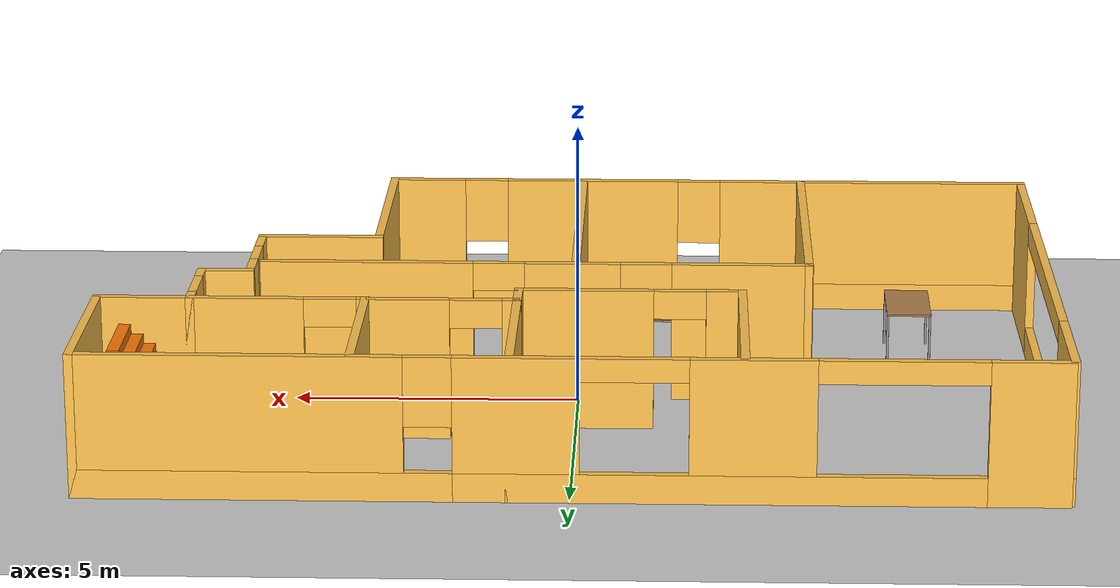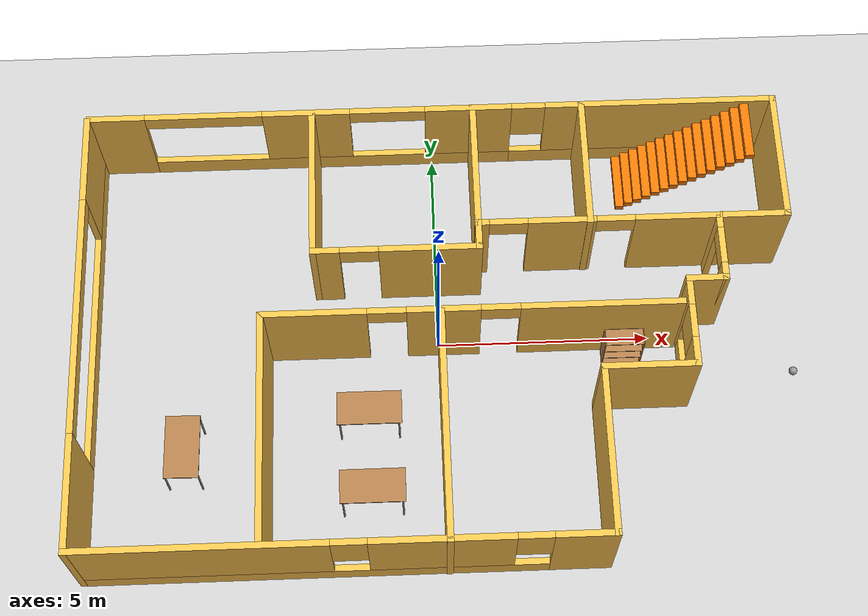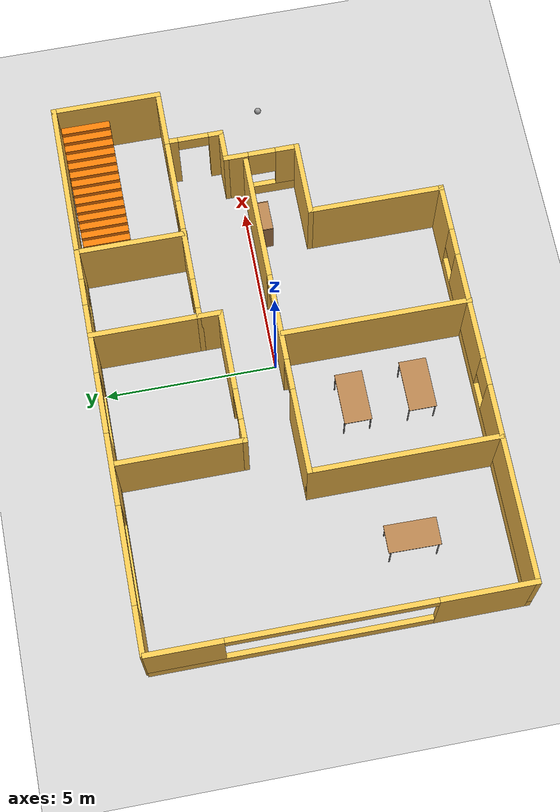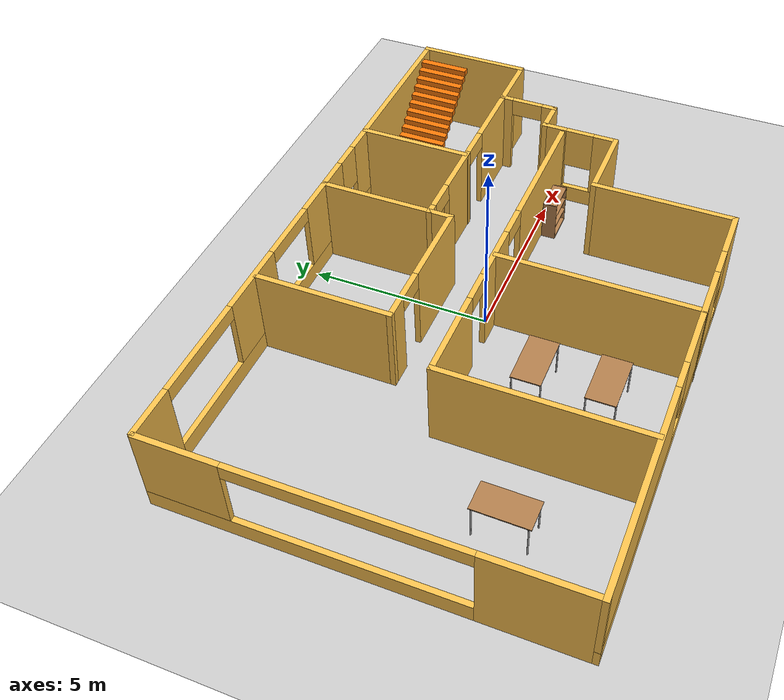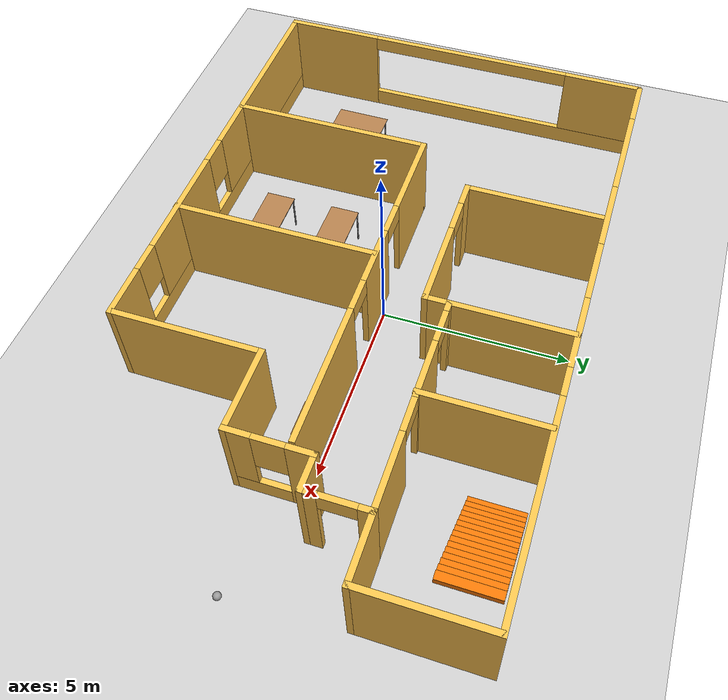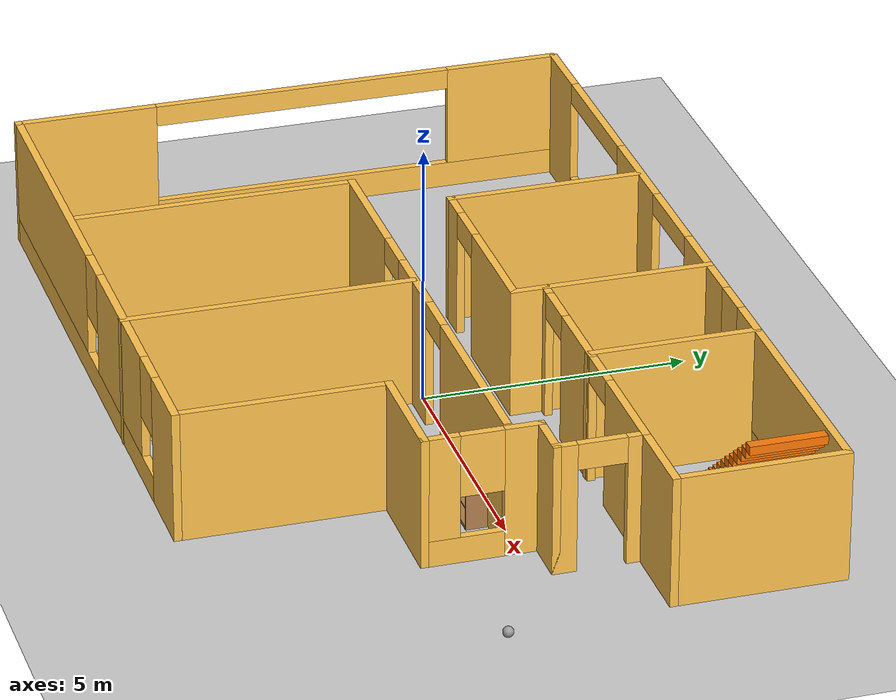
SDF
<sdf version="1.6">
 <world name="default">
  <light name="sun" type="directional">
   <pose>0 0 10 0 -0 0</pose>
   <diffuse>0.8 0.8 0.8 1</diffuse>
   <specular>0.2 0.2 0.2 1</specular>
   <attenuation>
    <range>1000</range>
    <constant>0.9</constant>
    <linear>0.01</linear>
    <quadratic>0.001</quadratic>
   </attenuation>
   <direction>-0.5 0.1 -0.9</direction>
  </light>
  <model name="ground_plane">
   <static>1</static>
   <link name="link">
    <collision name="collision">
     <geometry><plane><normal>0 0 1</normal><size>100 100</size></plane></geometry>
     <surface><friction><ode><mu>100</mu><mu2>50</mu2></ode></friction></surface>
    </collision>
    <visual name="visual">
     <cast_shadows>0</cast_shadows>
     <geometry><plane><normal>0 0 1</normal><size>100 100</size></plane></geometry>
     <material>
      <script><uri>file://media/materials/scripts/gazebo.material</uri><name>Gazebo/Grey</name></script>
     </material>
    </visual>
   </link>
  </model>
  <gravity>0 0 -9.8</gravity>
  <magnetic_field>6e-06 2.3e-05 -4.2e-05</magnetic_field>
  <atmosphere type="adiabatic"/>
  <physics name="default_physics" default="0" type="ode">
   <max_step_size>0.001</max_step_size>
   <real_time_factor>1</real_time_factor>
   <real_time_update_rate>1000</real_time_update_rate>
  </physics>
  <scene><ambient>0.4 0.4 0.4 1</ambient><background>0.7 0.7 0.7 1</background><shadows>1</shadows></scene>
  <spherical_coordinates>
   <surface_model>EARTH_WGS84</surface_model>
   <latitude_deg>0</latitude_deg>
   <longitude_deg>0</longitude_deg>
   <elevation>0</elevation>
   <heading_deg>0</heading_deg>
  </spherical_coordinates>
  <model name="Simple_Flat">
   <pose>-0.014366 -0.243612 0 0 -0 0</pose>
   <link name="Stairs_0">
    <visual name="Stairs_0_Visual_0">
     <pose>4.6346 4.48625 0.083333 0 -0 1.5708</pose>
     <geometry><box><size>1.4255 0.2042 0.166667</size></box></geometry>
     <material>
      <script><uri>file://media/materials/scripts/gazebo.material</uri><name>Gazebo/Grey</name></script>
      <ambient>0.996078 0.47451 0.0196078 1</ambient>
     </material>
     <meta><layer>0</layer></meta>
    </visual>
    <collision name="Stairs_0_Collision_0">
     <geometry><box><size>1.4255 0.2042 0.166667</size></box></geometry>
     <pose>4.6346 4.48625 0.083333 0 -0 1.5708</pose>
    </collision>
    <visual name="Stairs_0_Visual_1">
     <pose>4.8388 4.48625 0.25 0 -0 1.5708</pose>
     <geometry><box><size>1.4255 0.2042 0.166667</size></box></geometry>
     <material>
      <script><uri>file://media/materials/scripts/gazebo.material</uri><name>Gazebo/Grey</name></script>
      <ambient>0.996078 0.47451 0.0196078 1</ambient>
     </material>
     <meta><layer>0</layer></meta>
    </visual>
    <collision name="Stairs_0_Collision_1">
     <geometry><box><size>1.4255 0.2042 0.166667</size></box></geometry>
     <pose>4.8388 4.48625 0.25 0 -0 1.5708</pose>
    </collision>
    <visual name="Stairs_0_Visual_2">
     <pose>5.043 4.48625 0.416667 0 -0 1.5708</pose>
     <geometry><box><size>1.4255 0.2042 0.166667</size></box></geometry>
     <material>
      <script><uri>file://media/materials/scripts/gazebo.material</uri><name>Gazebo/Grey</name></script>
      <ambient>0.996078 0.47451 0.0196078 1</ambient>
     </material>
     <meta><layer>0</layer></meta>
    </visual>
    <collision name="Stairs_0_Collision_2">
     <geometry><box><size>1.4255 0.2042 0.166667</size></box></geometry>
     <pose>5.043 4.48625 0.416667 0 -0 1.5708</pose>
    </collision>
    <visual name="Stairs_0_Visual_3">
     <pose>5.2472 4.48625 0.583333 0 -0 1.5708</pose>
     <geometry><box><size>1.4255 0.2042 0.166667</size></box></geometry>
     <material>
      <script><uri>file://media/materials/scripts/gazebo.material</uri><name>Gazebo/Grey</name></script>
      <ambient>0.996078 0.47451 0.0196078 1</ambient>
     </material>
     <meta><layer>0</layer></meta>
    </visual>
    <collision name="Stairs_0_Collision_3">
     <geometry><box><size>1.4255 0.2042 0.166667</size></box></geometry>
     <pose>5.2472 4.48625 0.583333 0 -0 1.5708</pose>
    </collision>
    <visual name="Stairs_0_Visual_4">
     <pose>5.4514 4.48625 0.75 0 -0 1.5708</pose>
     <geometry><box><size>1.4255 0.2042 0.166667</size></box></geometry>
     <material>
      <script><uri>file://media/materials/scripts/gazebo.material</uri><name>Gazebo/Grey</name></script>
      <ambient>0.996078 0.47451 0.0196078 1</ambient>
     </material>
     <meta><layer>0</layer></meta>
    </visual>
    <collision name="Stairs_0_Collision_4">
     <geometry><box><size>1.4255 0.2042 0.166667</size></box></geometry>
     <pose>5.4514 4.48625 0.75 0 -0 1.5708</pose>
    </collision>
    <visual name="Stairs_0_Visual_5">
     <pose>5.6556 4.48625 0.916667 0 -0 1.5708</pose>
     <geometry><box><size>1.4255 0.2042 0.166667</size></box></geometry>
     <material>
      <script><uri>file://media/materials/scripts/gazebo.material</uri><name>Gazebo/Grey</name></script>
      <ambient>0.996078 0.47451 0.0196078 1</ambient>
     </material>
     <meta><layer>0</layer></meta>
    </visual>
    <collision name="Stairs_0_Collision_5">
     <geometry><box><size>1.4255 0.2042 0.166667</size></box></geometry>
     <pose>5.6556 4.48625 0.916667 0 -0 1.5708</pose>
    </collision>
    <visual name="Stairs_0_Visual_6">
     <pose>5.8598 4.48625 1.08333 0 -0 1.5708</pose>
     <geometry><box><size>1.4255 0.2042 0.166667</size></box></geometry>
     <material>
      <script><uri>file://media/materials/scripts/gazebo.material</uri><name>Gazebo/Grey</name></script>
      <ambient>0.996078 0.47451 0.0196078 1</ambient>
     </material>
     <meta><layer>0</layer></meta>
    </visual>
    <collision name="Stairs_0_Collision_6">
     <geometry><box><size>1.4255 0.2042 0.166667</size></box></geometry>
     <pose>5.8598 4.48625 1.08333 0 -0 1.5708</pose>
    </collision>
    <visual name="Stairs_0_Visual_7">
     <pose>6.064 4.48625 1.25 0 -0 1.5708</pose>
     <geometry><box><size>1.4255 0.2042 0.166667</size></box></geometry>
     <material>
      <script><uri>file://media/materials/scripts/gazebo.material</uri><name>Gazebo/Grey</name></script>
      <ambient>0.996078 0.47451 0.0196078 1</ambient>
     </material>
     <meta><layer>0</layer></meta>
    </visual>
    <collision name="Stairs_0_Collision_7">
     <geometry><box><size>1.4255 0.2042 0.166667</size></box></geometry>
     <pose>6.064 4.48625 1.25 0 -0 1.5708</pose>
    </collision>
    <visual name="Stairs_0_Visual_8">
     <pose>6.2682 4.48625 1.41667 0 -0 1.5708</pose>
     <geometry><box><size>1.4255 0.2042 0.166667</size></box></geometry>
     <material>
      <script><uri>file://media/materials/scripts/gazebo.material</uri><name>Gazebo/Grey</name></script>
      <ambient>0.996078 0.47451 0.0196078 1</ambient>
     </material>
     <meta><layer>0</layer></meta>
    </visual>
    <collision name="Stairs_0_Collision_8">
     <geometry><box><size>1.4255 0.2042 0.166667</size></box></geometry>
     <pose>6.2682 4.48625 1.41667 0 -0 1.5708</pose>
    </collision>
    <visual name="Stairs_0_Visual_9">
     <pose>6.4724 4.48625 1.58333 0 -0 1.5708</pose>
     <geometry><box><size>1.4255 0.2042 0.166667</size></box></geometry>
     <material>
      <script><uri>file://media/materials/scripts/gazebo.material</uri><name>Gazebo/Grey</name></script>
      <ambient>0.996078 0.47451 0.0196078 1</ambient>
     </material>
     <meta><layer>0</layer></meta>
    </visual>
    <collision name="Stairs_0_Collision_9">
     <geometry><box><size>1.4255 0.2042 0.166667</size></box></geometry>
     <pose>6.4724 4.48625 1.58333 0 -0 1.5708</pose>
    </collision>
    <visual name="Stairs_0_Visual_10">
     <pose>6.6766 4.48625 1.75 0 -0 1.5708</pose>
     <geometry><box><size>1.4255 0.2042 0.166667</size></box></geometry>
     <material>
      <script><uri>file://media/materials/scripts/gazebo.material</uri><name>Gazebo/Grey</name></script>
      <ambient>0.996078 0.47451 0.0196078 1</ambient>
     </material>
     <meta><layer>0</layer></meta>
    </visual>
    <collision name="Stairs_0_Collision_10">
     <geometry><box><size>1.4255 0.2042 0.166667</size></box></geometry>
     <pose>6.6766 4.48625 1.75 0 -0 1.5708</pose>
    </collision>
    <visual name="Stairs_0_Visual_11">
     <pose>6.8808 4.48625 1.91667 0 -0 1.5708</pose>
     <geometry><box><size>1.4255 0.2042 0.166667</size></box></geometry>
     <material>
      <script><uri>file://media/materials/scripts/gazebo.material</uri><name>Gazebo/Grey</name></script>
      <ambient>0.996078 0.47451 0.0196078 1</ambient>
     </material>
     <meta><layer>0</layer></meta>
    </visual>
    <collision name="Stairs_0_Collision_11">
     <geometry><box><size>1.4255 0.2042 0.166667</size></box></geometry>
     <pose>6.8808 4.48625 1.91667 0 -0 1.5708</pose>
    </collision>
    <visual name="Stairs_0_Visual_12">
     <pose>7.085 4.48625 2.08333 0 -0 1.5708</pose>
     <geometry><box><size>1.4255 0.2042 0.166667</size></box></geometry>
     <material>
      <script><uri>file://media/materials/scripts/gazebo.material</uri><name>Gazebo/Grey</name></script>
      <ambient>0.996078 0.47451 0.0196078 1</ambient>
     </material>
     <meta><layer>0</layer></meta>
    </visual>
    <collision name="Stairs_0_Collision_12">
     <geometry><box><size>1.4255 0.2042 0.166667</size></box></geometry>
     <pose>7.085 4.48625 2.08333 0 -0 1.5708</pose>
    </collision>
    <visual name="Stairs_0_Visual_13">
     <pose>7.2892 4.48625 2.25 0 -0 1.5708</pose>
     <geometry><box><size>1.4255 0.2042 0.166667</size></box></geometry>
     <material>
      <script><uri>file://media/materials/scripts/gazebo.material</uri><name>Gazebo/Grey</name></script>
      <ambient>0.996078 0.47451 0.0196078 1</ambient>
     </material>
     <meta><layer>0</layer></meta>
    </visual>
    <collision name="Stairs_0_Collision_13">
     <geometry><box><size>1.4255 0.2042 0.166667</size></box></geometry>
     <pose>7.2892 4.48625 2.25 0 -0 1.5708</pose>
    </collision>
    <visual name="Stairs_0_Visual_14">
     <pose>7.4934 4.48625 2.41667 0 -0 1.5708</pose>
     <geometry><box><size>1.4255 0.2042 0.166667</size></box></geometry>
     <material>
      <script><uri>file://media/materials/scripts/gazebo.material</uri><name>Gazebo/Grey</name></script>
      <ambient>0.996078 0.47451 0.0196078 1</ambient>
     </material>
     <meta><layer>0</layer></meta>
    </visual>
    <collision name="Stairs_0_Collision_14">
     <geometry><box><size>1.4255 0.2042 0.166667</size></box></geometry>
     <pose>7.4934 4.48625 2.41667 0 -0 1.5708</pose>
    </collision>
   </link>
   <link name="Wall_0">
    <pose>0.025 5.3315 0 0 -0 0</pose>
    <visual name="Wall_0_Visual_0">
     <pose>-7.5555 0 1.25 0 -0 0</pose>
     <geometry><box><size>1.389 0.15 2.5</size></box></geometry>
     <material>
      <script><uri>file://media/materials/scripts/gazebo.material</uri><name>Gazebo/Grey</name></script>
      <ambient>1 0.764706 0.305882 1</ambient>
     </material>
     <meta><layer>0</layer></meta>
    </visual>
    <collision name="Wall_0_Collision_0">
     <geometry><box><size>1.389 0.15 2.5</size></box></geometry>
     <pose>-7.5555 0 1.25 0 -0 0</pose>
    </collision>
    <visual name="Wall_0_Visual_1">
     <pose>-2.474 0 0.25 0 -0 0</pose>
     <geometry><box><size>8.774 0.15 0.5</size></box></geometry>
     <material>
      <script><uri>file://media/materials/scripts/gazebo.material</uri><name>Gazebo/Grey</name></script>
      <ambient>1 0.764706 0.305882 1</ambient>
     </material>
     <meta><layer>0</layer></meta>
    </visual>
    <collision name="Wall_0_Collision_1">
     <geometry><box><size>8.774 0.15 0.5</size></box></geometry>
     <pose>-2.474 0 0.25 0 -0 0</pose>
    </collision>
    <visual name="Wall_0_Visual_2">
     <pose>5.0815 0 0.25 0 -0 0</pose>
     <geometry><box><size>6.337 0.15 0.5</size></box></geometry>
     <material>
      <script><uri>file://media/materials/scripts/gazebo.material</uri><name>Gazebo/Grey</name></script>
      <ambient>1 0.764706 0.305882 1</ambient>
     </material>
     <meta><layer>0</layer></meta>
    </visual>
    <collision name="Wall_0_Collision_2">
     <geometry><box><size>6.337 0.15 0.5</size></box></geometry>
     <pose>5.0815 0 0.25 0 -0 0</pose>
    </collision>
    <visual name="Wall_0_Visual_3">
     <pose>5.4815 0 1.5 0 -0 0</pose>
     <geometry><box><size>5.537 0.15 2</size></box></geometry>
     <material>
      <script><uri>file://media/materials/scripts/gazebo.material</uri><name>Gazebo/Grey</name></script>
      <ambient>1 0.764706 0.305882 1</ambient>
     </material>
     <meta><layer>0</layer></meta>
    </visual>
    <collision name="Wall_0_Collision_3">
     <geometry><box><size>5.537 0.15 2</size></box></geometry>
     <pose>5.4815 0 1.5 0 -0 0</pose>
    </collision>
    <visual name="Wall_0_Visual_4">
     <pose>-3.0145 0 1.5 0 -0 0</pose>
     <geometry><box><size>2.093 0.15 2</size></box></geometry>
     <material>
      <script><uri>file://media/materials/scripts/gazebo.material</uri><name>Gazebo/Grey</name></script>
      <ambient>1 0.764706 0.305882 1</ambient>
     </material>
     <meta><layer>0</layer></meta>
    </visual>
    <collision name="Wall_0_Collision_4">
     <geometry><box><size>2.093 0.15 2</size></box></geometry>
     <pose>-3.0145 0 1.5 0 -0 0</pose>
    </collision>
    <visual name="Wall_0_Visual_5">
     <pose>0.8725 0 1.5 0 -0 0</pose>
     <geometry><box><size>2.081 0.15 2</size></box></geometry>
     <material>
      <script><uri>file://media/materials/scripts/gazebo.material</uri><name>Gazebo/Grey</name></script>
      <ambient>1 0.764706 0.305882 1</ambient>
     </material>
     <meta><layer>0</layer></meta>
    </visual>
    <collision name="Wall_0_Collision_5">
     <geometry><box><size>2.081 0.15 2</size></box></geometry>
     <pose>0.8725 0 1.5 0 -0 0</pose>
    </collision>
    <visual name="Wall_0_Visual_6">
     <pose>0.8725 0 1.5 0 -0 0</pose>
     <geometry><box><size>2.081 0.15 2</size></box></geometry>
     <material>
      <script><uri>file://media/materials/scripts/gazebo.material</uri><name>Gazebo/Grey</name></script>
      <ambient>1 0.764706 0.305882 1</ambient>
     </material>
     <meta><layer>0</layer></meta>
    </visual>
    <collision name="Wall_0_Collision_6">
     <geometry><box><size>2.081 0.15 2</size></box></geometry>
     <pose>0.8725 0 1.5 0 -0 0</pose>
    </collision>
    <visual name="Wall_0_Visual_7">
     <pose>2.313 0 1.9 0 -0 0</pose>
     <geometry><box><size>0.8 0.15 1.2</size></box></geometry>
     <material>
      <script><uri>file://media/materials/scripts/gazebo.material</uri><name>Gazebo/Grey</name></script>
      <ambient>1 0.764706 0.305882 1</ambient>
     </material>
     <meta><layer>0</layer></meta>
    </visual>
    <collision name="Wall_0_Collision_7">
     <geometry><box><size>0.8 0.15 1.2</size></box></geometry>
     <pose>2.313 0 1.9 0 -0 0</pose>
    </collision>
    <visual name="Wall_0_Visual_8">
     <pose>2.313 0 1.9 0 -0 0</pose>
     <geometry><box><size>0.8 0.15 1.2</size></box></geometry>
     <material>
      <script><uri>file://media/materials/scripts/gazebo.material</uri><name>Gazebo/Grey</name></script>
      <ambient>1 0.764706 0.305882 1</ambient>
     </material>
     <meta><layer>0</layer></meta>
    </visual>
    <collision name="Wall_0_Collision_8">
     <geometry><box><size>0.8 0.15 1.2</size></box></geometry>
     <pose>2.313 0 1.9 0 -0 0</pose>
    </collision>
    <visual name="Wall_0_Visual_9">
     <pose>-5.461 0 2.3 0 -0 0</pose>
     <geometry><box><size>2.8 0.15 0.4</size></box></geometry>
     <material>
      <script><uri>file://media/materials/scripts/gazebo.material</uri><name>Gazebo/Grey</name></script>
      <ambient>1 0.764706 0.305882 1</ambient>
     </material>
     <meta><layer>0</layer></meta>
    </visual>
    <collision name="Wall_0_Collision_9">
     <geometry><box><size>2.8 0.15 0.4</size></box></geometry>
     <pose>-5.461 0 2.3 0 -0 0</pose>
    </collision>
    <visual name="Wall_0_Visual_10">
     <pose>-1.068 0 2.3 0 -0 0</pose>
     <geometry><box><size>1.8 0.15 0.4</size></box></geometry>
     <material>
      <script><uri>file://media/materials/scripts/gazebo.material</uri><name>Gazebo/Grey</name></script>
      <ambient>1 0.764706 0.305882 1</ambient>
     </material>
     <meta><layer>0</layer></meta>
    </visual>
    <collision name="Wall_0_Collision_10">
     <geometry><box><size>1.8 0.15 0.4</size></box></geometry>
     <pose>-1.068 0 2.3 0 -0 0</pose>
    </collision>
   </link>
   <link name="Wall_1">
    <collision name="Wall_1_Collision">
     <geometry><box><size>3.25 0.15 2.5</size></box></geometry>
     <pose>0 0 1.25 0 -0 0</pose>
    </collision>
    <visual name="Wall_1_Visual">
     <pose>0 0 1.25 0 -0 0</pose>
     <geometry><box><size>3.25 0.15 2.5</size></box></geometry>
     <material>
      <script><uri>file://media/materials/scripts/gazebo.material</uri><name>Gazebo/Grey</name></script>
      <ambient>1 0.764706 0.305882 1</ambient>
     </material>
     <meta><layer>0</layer></meta>
    </visual>
    <pose>8.2 3.7815 0 0 0 -1.5708</pose>
   </link>
   <link name="Wall_11">
    <collision name="Wall_11_Collision">
     <geometry><box><size>5.5 0.15 2.5</size></box></geometry>
     <pose>0 0 1.25 0 -0 0</pose>
    </collision>
    <visual name="Wall_11_Visual">
     <pose>0 0 1.25 0 -0 0</pose>
     <geometry><box><size>5.5 0.15 2.5</size></box></geometry>
     <material>
      <script><uri>file://media/materials/scripts/gazebo.material</uri><name>Gazebo/Grey</name></script>
      <ambient>1 0.764706 0.305882 1</ambient>
     </material>
     <meta><layer>0</layer></meta>
    </visual>
    <pose>-4.0445 -2.608 0 0 -0 1.5708</pose>
   </link>
   <link name="Wall_12">
    <pose>0.7555 0.067 0 0 -0 0</pose>
    <visual name="Wall_12_Visual_0">
     <pose>-3.63075 0 1.25 0 -0 0</pose>
     <geometry><box><size>2.4885 0.15 2.5</size></box></geometry>
     <material>
      <script><uri>file://media/materials/scripts/gazebo.material</uri><name>Gazebo/Grey</name></script>
      <ambient>1 0.764706 0.305882 1</ambient>
     </material>
     <meta><layer>0</layer></meta>
    </visual>
    <collision name="Wall_12_Collision_0">
     <geometry><box><size>2.4885 0.15 2.5</size></box></geometry>
     <pose>-3.63075 0 1.25 0 -0 0</pose>
    </collision>
    <visual name="Wall_12_Visual_1">
     <pose>-0.637 0 1.25 0 -0 0</pose>
     <geometry><box><size>1.699 0.15 2.5</size></box></geometry>
     <material>
      <script><uri>file://media/materials/scripts/gazebo.material</uri><name>Gazebo/Grey</name></script>
      <ambient>1 0.764706 0.305882 1</ambient>
     </material>
     <meta><layer>0</layer></meta>
    </visual>
    <collision name="Wall_12_Collision_1">
     <geometry><box><size>1.699 0.15 2.5</size></box></geometry>
     <pose>-0.637 0 1.25 0 -0 0</pose>
    </collision>
    <visual name="Wall_12_Visual_2">
     <pose>2.99375 0 1.25 0 -0 0</pose>
     <geometry><box><size>3.7625 0.15 2.5</size></box></geometry>
     <material>
      <script><uri>file://media/materials/scripts/gazebo.material</uri><name>Gazebo/Grey</name></script>
      <ambient>1 0.764706 0.305882 1</ambient>
     </material>
     <meta><layer>0</layer></meta>
    </visual>
    <collision name="Wall_12_Collision_2">
     <geometry><box><size>3.7625 0.15 2.5</size></box></geometry>
     <pose>2.99375 0 1.25 0 -0 0</pose>
    </collision>
    <visual name="Wall_12_Visual_3">
     <pose>-1.9365 0 2.25 0 -0 0</pose>
     <geometry><box><size>0.9 0.15 0.5</size></box></geometry>
     <material>
      <script><uri>file://media/materials/scripts/gazebo.material</uri><name>Gazebo/Grey</name></script>
      <ambient>1 0.764706 0.305882 1</ambient>
     </material>
     <meta><layer>0</layer></meta>
    </visual>
    <collision name="Wall_12_Collision_3">
     <geometry><box><size>0.9 0.15 0.5</size></box></geometry>
     <pose>-1.9365 0 2.25 0 -0 0</pose>
    </collision>
    <visual name="Wall_12_Visual_4">
     <pose>0.6625 0 2.25 0 -0 0</pose>
     <geometry><box><size>0.9 0.15 0.5</size></box></geometry>
     <material>
      <script><uri>file://media/materials/scripts/gazebo.material</uri><name>Gazebo/Grey</name></script>
      <ambient>1 0.764706 0.305882 1</ambient>
     </material>
     <meta><layer>0</layer></meta>
    </visual>
    <collision name="Wall_12_Collision_4">
     <geometry><box><size>0.9 0.15 0.5</size></box></geometry>
     <pose>0.6625 0 2.25 0 -0 0</pose>
    </collision>
   </link>
   <link name="Wall_14">
    <collision name="Wall_14_Collision">
     <geometry><box><size>5.5 0.15 2.5</size></box></geometry>
     <pose>0 0 1.25 0 -0 0</pose>
    </collision>
    <visual name="Wall_14_Visual">
     <pose>0 0 1.25 0 -0 0</pose>
     <geometry><box><size>5.5 0.15 2.5</size></box></geometry>
     <material>
      <script><uri>file://media/materials/scripts/gazebo.material</uri><name>Gazebo/Grey</name></script>
      <ambient>1 0.764706 0.305882 1</ambient>
     </material>
     <meta><layer>0</layer></meta>
    </visual>
    <pose>0.061 -2.6565 0 0 0 -1.5708</pose>
   </link>
   <link name="Wall_16">
    <pose>3.8 2.2315 0 0 -0 3.14159</pose>
    <visual name="Wall_16_Visual_0">
     <pose>-1.863 0 1.25 0 -0 0</pose>
     <geometry><box><size>2.024 0.15 2.5</size></box></geometry>
     <material>
      <script><uri>file://media/materials/scripts/gazebo.material</uri><name>Gazebo/Grey</name></script>
      <ambient>1 0.764706 0.305882 1</ambient>
     </material>
     <meta><layer>0</layer></meta>
    </visual>
    <collision name="Wall_16_Collision_0">
     <geometry><box><size>2.024 0.15 2.5</size></box></geometry>
     <pose>-1.863 0 1.25 0 -0 0</pose>
    </collision>
    <visual name="Wall_16_Visual_1">
     <pose>0.84675 0 1.25 0 -0 0</pose>
     <geometry><box><size>1.5955 0.15 2.5</size></box></geometry>
     <material>
      <script><uri>file://media/materials/scripts/gazebo.material</uri><name>Gazebo/Grey</name></script>
      <ambient>1 0.764706 0.305882 1</ambient>
     </material>
     <meta><layer>0</layer></meta>
    </visual>
    <collision name="Wall_16_Collision_1">
     <geometry><box><size>1.5955 0.15 2.5</size></box></geometry>
     <pose>0.84675 0 1.25 0 -0 0</pose>
    </collision>
    <visual name="Wall_16_Visual_2">
     <pose>2.70975 0 1.25 0 -0 0</pose>
     <geometry><box><size>0.3305 0.15 2.5</size></box></geometry>
     <material>
      <script><uri>file://media/materials/scripts/gazebo.material</uri><name>Gazebo/Grey</name></script>
      <ambient>1 0.764706 0.305882 1</ambient>
     </material>
     <meta><layer>0</layer></meta>
    </visual>
    <collision name="Wall_16_Collision_2">
     <geometry><box><size>0.3305 0.15 2.5</size></box></geometry>
     <pose>2.70975 0 1.25 0 -0 0</pose>
    </collision>
    <visual name="Wall_16_Visual_3">
     <pose>-0.401 0 2.25 0 -0 0</pose>
     <geometry><box><size>0.9 0.15 0.5</size></box></geometry>
     <material>
      <script><uri>file://media/materials/scripts/gazebo.material</uri><name>Gazebo/Grey</name></script>
      <ambient>1 0.764706 0.305882 1</ambient>
     </material>
     <meta><layer>0</layer></meta>
    </visual>
    <collision name="Wall_16_Collision_3">
     <geometry><box><size>0.9 0.15 0.5</size></box></geometry>
     <pose>-0.401 0 2.25 0 -0 0</pose>
    </collision>
    <visual name="Wall_16_Visual_4">
     <pose>2.0945 0 2.25 0 -0 0</pose>
     <geometry><box><size>0.9 0.15 0.5</size></box></geometry>
     <material>
      <script><uri>file://media/materials/scripts/gazebo.material</uri><name>Gazebo/Grey</name></script>
      <ambient>1 0.764706 0.305882 1</ambient>
     </material>
     <meta><layer>0</layer></meta>
    </visual>
    <collision name="Wall_16_Collision_4">
     <geometry><box><size>0.9 0.15 0.5</size></box></geometry>
     <pose>2.0945 0 2.25 0 -0 0</pose>
    </collision>
   </link>
   <link name="Wall_17">
    <collision name="Wall_17_Collision">
     <geometry><box><size>3.25 0.15 2.5</size></box></geometry>
     <pose>0 0 1.25 0 -0 0</pose>
    </collision>
    <visual name="Wall_17_Visual">
     <pose>0 0 1.25 0 -0 0</pose>
     <geometry><box><size>3.25 0.15 2.5</size></box></geometry>
     <material>
      <script><uri>file://media/materials/scripts/gazebo.material</uri><name>Gazebo/Grey</name></script>
      <ambient>1 0.764706 0.305882 1</ambient>
     </material>
     <meta><layer>0</layer></meta>
    </visual>
    <pose>1 3.7815 0 0 -0 1.5708</pose>
   </link>
   <link name="Wall_19">
    <collision name="Wall_19_Collision">
     <geometry><box><size>3.25 0.15 2.5</size></box></geometry>
     <pose>0 0 1.25 0 -0 0</pose>
    </collision>
    <visual name="Wall_19_Visual">
     <pose>0 0 1.25 0 -0 0</pose>
     <geometry><box><size>3.25 0.15 2.5</size></box></geometry>
     <material>
      <script><uri>file://media/materials/scripts/gazebo.material</uri><name>Gazebo/Grey</name></script>
      <ambient>1 0.764706 0.305882 1</ambient>
     </material>
     <meta><layer>0</layer></meta>
    </visual>
    <pose>3.603 3.765 0 0 -0 1.5708</pose>
   </link>
   <link name="Wall_2">
    <collision name="Wall_2_Collision">
     <geometry><box><size>1.75 0.15 2.5</size></box></geometry>
     <pose>0 0 1.25 0 -0 0</pose>
    </collision>
    <visual name="Wall_2_Visual">
     <pose>0 0 1.25 0 -0 0</pose>
     <geometry><box><size>1.75 0.15 2.5</size></box></geometry>
     <material>
      <script><uri>file://media/materials/scripts/gazebo.material</uri><name>Gazebo/Grey</name></script>
      <ambient>1 0.764706 0.305882 1</ambient>
     </material>
     <meta><layer>0</layer></meta>
    </visual>
    <pose>7.4 2.2315 0 0 -0 3.14159</pose>
   </link>
   <link name="Wall_21">
    <collision name="Wall_21_Collision">
     <geometry><box><size>0.75 0.15 2.5</size></box></geometry>
     <pose>0 0 1.25 0 -0 0</pose>
    </collision>
    <visual name="Wall_21_Visual">
     <pose>0 0 1.25 0 -0 0</pose>
     <geometry><box><size>0.75 0.15 2.5</size></box></geometry>
     <material>
      <script><uri>file://media/materials/scripts/gazebo.material</uri><name>Gazebo/Grey</name></script>
      <ambient>1 0.764706 0.305882 1</ambient>
     </material>
     <meta><layer>0</layer></meta>
    </visual>
    <pose>1 1.9315 0 0 0 -1.5708</pose>
   </link>
   <link name="Wall_22">
    <pose>-0.925 1.6315 0 0 -0 3.14159</pose>
    <visual name="Wall_22_Visual_0">
     <pose>-0.798 0 1.25 0 -0 0</pose>
     <geometry><box><size>2.404 0.15 2.5</size></box></geometry>
     <material>
      <script><uri>file://media/materials/scripts/gazebo.material</uri><name>Gazebo/Grey</name></script>
      <ambient>1 0.764706 0.305882 1</ambient>
     </material>
     <meta><layer>0</layer></meta>
    </visual>
    <collision name="Wall_22_Collision_0">
     <geometry><box><size>2.404 0.15 2.5</size></box></geometry>
     <pose>-0.798 0 1.25 0 -0 0</pose>
    </collision>
    <visual name="Wall_22_Visual_1">
     <pose>1.652 0 1.25 0 -0 0</pose>
     <geometry><box><size>0.696 0.15 2.5</size></box></geometry>
     <material>
      <script><uri>file://media/materials/scripts/gazebo.material</uri><name>Gazebo/Grey</name></script>
      <ambient>1 0.764706 0.305882 1</ambient>
     </material>
     <meta><layer>0</layer></meta>
    </visual>
    <collision name="Wall_22_Collision_1">
     <geometry><box><size>0.696 0.15 2.5</size></box></geometry>
     <pose>1.652 0 1.25 0 -0 0</pose>
    </collision>
    <visual name="Wall_22_Visual_2">
     <pose>0.854 0 2.25 0 -0 0</pose>
     <geometry><box><size>0.9 0.15 0.5</size></box></geometry>
     <material>
      <script><uri>file://media/materials/scripts/gazebo.material</uri><name>Gazebo/Grey</name></script>
      <ambient>1 0.764706 0.305882 1</ambient>
     </material>
     <meta><layer>0</layer></meta>
    </visual>
    <collision name="Wall_22_Collision_2">
     <geometry><box><size>0.9 0.15 0.5</size></box></geometry>
     <pose>0.854 0 2.25 0 -0 0</pose>
    </collision>
   </link>
   <link name="Wall_23">
    <collision name="Wall_23_Collision">
     <geometry><box><size>3.75 0.15 2.5</size></box></geometry>
     <pose>0 0 1.25 0 -0 0</pose>
    </collision>
    <visual name="Wall_23_Visual">
     <pose>0 0 1.25 0 -0 0</pose>
     <geometry><box><size>3.75 0.15 2.5</size></box></geometry>
     <material>
      <script><uri>file://media/materials/scripts/gazebo.material</uri><name>Gazebo/Grey</name></script>
      <ambient>1 0.764706 0.305882 1</ambient>
     </material>
     <meta><layer>0</layer></meta>
    </visual>
    <pose>-2.85 3.4315 0 0 -0 1.5708</pose>
   </link>
   <link name="Wall_3">
    <pose>6.6 1.4315 0 0 0 -1.5708</pose>
    <visual name="Wall_3_Visual_0">
     <pose>-0.67475 0 1.25 0 -0 0</pose>
     <geometry><box><size>0.4005 0.15 2.5</size></box></geometry>
     <material>
      <script><uri>file://media/materials/scripts/gazebo.material</uri><name>Gazebo/Grey</name></script>
      <ambient>1 0.764706 0.305882 1</ambient>
     </material>
     <meta><layer>0</layer></meta>
    </visual>
    <collision name="Wall_3_Collision_0">
     <geometry><box><size>0.4005 0.15 2.5</size></box></geometry>
     <pose>-0.67475 0 1.25 0 -0 0</pose>
    </collision>
    <visual name="Wall_3_Visual_1">
     <pose>0.65025 0 1.25 0 -0 0</pose>
     <geometry><box><size>0.4495 0.15 2.5</size></box></geometry>
     <material>
      <script><uri>file://media/materials/scripts/gazebo.material</uri><name>Gazebo/Grey</name></script>
      <ambient>1 0.764706 0.305882 1</ambient>
     </material>
     <meta><layer>0</layer></meta>
    </visual>
    <collision name="Wall_3_Collision_1">
     <geometry><box><size>0.4495 0.15 2.5</size></box></geometry>
     <pose>0.65025 0 1.25 0 -0 0</pose>
    </collision>
    <visual name="Wall_3_Visual_2">
     <pose>-0.0245 0 2.25 0 -0 0</pose>
     <geometry><box><size>0.9 0.15 0.5</size></box></geometry>
     <material>
      <script><uri>file://media/materials/scripts/gazebo.material</uri><name>Gazebo/Grey</name></script>
      <ambient>1 0.764706 0.305882 1</ambient>
     </material>
     <meta><layer>0</layer></meta>
    </visual>
    <collision name="Wall_3_Collision_2">
     <geometry><box><size>0.9 0.15 0.5</size></box></geometry>
     <pose>-0.0245 0 2.25 0 -0 0</pose>
    </collision>
   </link>
   <link name="Wall_4">
    <collision name="Wall_4_Collision">
     <geometry><box><size>1 0.15 2.5</size></box></geometry>
     <pose>0 0 1.25 0 -0 0</pose>
    </collision>
    <visual name="Wall_4_Visual">
     <pose>0 0 1.25 0 -0 0</pose>
     <geometry><box><size>1 0.15 2.5</size></box></geometry>
     <material>
      <script><uri>file://media/materials/scripts/gazebo.material</uri><name>Gazebo/Grey</name></script>
      <ambient>1 0.764706 0.305882 1</ambient>
     </material>
     <meta><layer>0</layer></meta>
    </visual>
    <pose>6.175 0.6315 0 0 -0 3.14159</pose>
   </link>
   <link name="Wall_5">
    <pose>5.75 -0.4185 0 0 0 -1.5708</pose>
    <visual name="Wall_5_Visual_0">
     <pose>-0.75675 0 1.25 0 -0 0</pose>
     <geometry><box><size>0.7365 0.15 2.5</size></box></geometry>
     <material>
      <script><uri>file://media/materials/scripts/gazebo.material</uri><name>Gazebo/Grey</name></script>
      <ambient>1 0.764706 0.305882 1</ambient>
     </material>
     <meta><layer>0</layer></meta>
    </visual>
    <collision name="Wall_5_Collision_0">
     <geometry><box><size>0.7365 0.15 2.5</size></box></geometry>
     <pose>-0.75675 0 1.25 0 -0 0</pose>
    </collision>
    <visual name="Wall_5_Visual_1">
     <pose>0.36825 0 0.25 0 -0 0</pose>
     <geometry><box><size>1.5135 0.15 0.5</size></box></geometry>
     <material>
      <script><uri>file://media/materials/scripts/gazebo.material</uri><name>Gazebo/Grey</name></script>
      <ambient>1 0.764706 0.305882 1</ambient>
     </material>
     <meta><layer>0</layer></meta>
    </visual>
    <collision name="Wall_5_Collision_1">
     <geometry><box><size>1.5135 0.15 0.5</size></box></geometry>
     <pose>0.36825 0 0.25 0 -0 0</pose>
    </collision>
    <visual name="Wall_5_Visual_2">
     <pose>0.76825 0 1.5 0 -0 0</pose>
     <geometry><box><size>0.7135 0.15 2</size></box></geometry>
     <material>
      <script><uri>file://media/materials/scripts/gazebo.material</uri><name>Gazebo/Grey</name></script>
      <ambient>1 0.764706 0.305882 1</ambient>
     </material>
     <meta><layer>0</layer></meta>
    </visual>
    <collision name="Wall_5_Collision_2">
     <geometry><box><size>0.7135 0.15 2</size></box></geometry>
     <pose>0.76825 0 1.5 0 -0 0</pose>
    </collision>
    <visual name="Wall_5_Visual_3">
     <pose>0.0115 0 1.9 0 -0 0</pose>
     <geometry><box><size>0.8 0.15 1.2</size></box></geometry>
     <material>
      <script><uri>file://media/materials/scripts/gazebo.material</uri><name>Gazebo/Grey</name></script>
      <ambient>1 0.764706 0.305882 1</ambient>
     </material>
     <meta><layer>0</layer></meta>
    </visual>
    <collision name="Wall_5_Collision_3">
     <geometry><box><size>0.8 0.15 1.2</size></box></geometry>
     <pose>0.0115 0 1.9 0 -0 0</pose>
    </collision>
   </link>
   <link name="Wall_6">
    <collision name="Wall_6_Collision">
     <geometry><box><size>2.25 0.15 2.5</size></box></geometry>
     <pose>0 0 1.25 0 -0 0</pose>
    </collision>
    <visual name="Wall_6_Visual">
     <pose>0 0 1.25 0 -0 0</pose>
     <geometry><box><size>2.25 0.15 2.5</size></box></geometry>
     <material>
      <script><uri>file://media/materials/scripts/gazebo.material</uri><name>Gazebo/Grey</name></script>
      <ambient>1 0.764706 0.305882 1</ambient>
     </material>
     <meta><layer>0</layer></meta>
    </visual>
    <pose>4.7 -1.4685 0 0 -0 3.14159</pose>
   </link>
   <link name="Wall_7">
    <collision name="Wall_7_Collision">
     <geometry><box><size>4 0.15 2.5</size></box></geometry>
     <pose>0 0 1.25 0 -0 0</pose>
    </collision>
    <visual name="Wall_7_Visual">
     <pose>0 0 1.25 0 -0 0</pose>
     <geometry><box><size>4 0.15 2.5</size></box></geometry>
     <material>
      <script><uri>file://media/materials/scripts/gazebo.material</uri><name>Gazebo/Grey</name></script>
      <ambient>1 0.764706 0.305882 1</ambient>
     </material>
     <meta><layer>0</layer></meta>
    </visual>
    <pose>3.65 -3.3935 0 0 0 -1.5708</pose>
   </link>
   <link name="Wall_8">
    <pose>-2.275 -5.3185 0 0 -0 3.14159</pose>
    <visual name="Wall_8_Visual_0">
     <pose>-5.288 0 1.25 0 -0 0</pose>
     <geometry><box><size>1.424 0.15 2.5</size></box></geometry>
     <material>
      <script><uri>file://media/materials/scripts/gazebo.material</uri><name>Gazebo/Grey</name></script>
      <ambient>1 0.764706 0.305882 1</ambient>
     </material>
     <meta><layer>0</layer></meta>
    </visual>
    <collision name="Wall_8_Collision_0">
     <geometry><box><size>1.424 0.15 2.5</size></box></geometry>
     <pose>-5.288 0 1.25 0 -0 0</pose>
    </collision>
    <visual name="Wall_8_Visual_1">
     <pose>0.712 0 0.25 0 -0 0</pose>
     <geometry><box><size>10.576 0.15 0.5</size></box></geometry>
     <material>
      <script><uri>file://media/materials/scripts/gazebo.material</uri><name>Gazebo/Grey</name></script>
      <ambient>1 0.764706 0.305882 1</ambient>
     </material>
     <meta><layer>0</layer></meta>
    </visual>
    <collision name="Wall_8_Collision_1">
     <geometry><box><size>10.576 0.15 0.5</size></box></geometry>
     <pose>0.712 0 0.25 0 -0 0</pose>
    </collision>
    <visual name="Wall_8_Visual_2">
     <pose>-2.1635 0 1.5 0 -0 0</pose>
     <geometry><box><size>3.225 0.15 2</size></box></geometry>
     <material>
      <script><uri>file://media/materials/scripts/gazebo.material</uri><name>Gazebo/Grey</name></script>
      <ambient>1 0.764706 0.305882 1</ambient>
     </material>
     <meta><layer>0</layer></meta>
    </visual>
    <collision name="Wall_8_Collision_2">
     <geometry><box><size>3.225 0.15 2</size></box></geometry>
     <pose>-2.1635 0 1.5 0 -0 0</pose>
    </collision>
    <visual name="Wall_8_Visual_3">
     <pose>3.1245 0 1.5 0 -0 0</pose>
     <geometry><box><size>5.751 0.15 2</size></box></geometry>
     <material>
      <script><uri>file://media/materials/scripts/gazebo.material</uri><name>Gazebo/Grey</name></script>
      <ambient>1 0.764706 0.305882 1</ambient>
     </material>
     <meta><layer>0</layer></meta>
    </visual>
    <collision name="Wall_8_Collision_3">
     <geometry><box><size>5.751 0.15 2</size></box></geometry>
     <pose>3.1245 0 1.5 0 -0 0</pose>
    </collision>
    <visual name="Wall_8_Visual_4">
     <pose>-4.176 0 1.9 0 -0 0</pose>
     <geometry><box><size>0.8 0.15 1.2</size></box></geometry>
     <material>
      <script><uri>file://media/materials/scripts/gazebo.material</uri><name>Gazebo/Grey</name></script>
      <ambient>1 0.764706 0.305882 1</ambient>
     </material>
     <meta><layer>0</layer></meta>
    </visual>
    <collision name="Wall_8_Collision_4">
     <geometry><box><size>0.8 0.15 1.2</size></box></geometry>
     <pose>-4.176 0 1.9 0 -0 0</pose>
    </collision>
    <visual name="Wall_8_Visual_5">
     <pose>-0.151 0 1.9 0 -0 0</pose>
     <geometry><box><size>0.8 0.15 1.2</size></box></geometry>
     <material>
      <script><uri>file://media/materials/scripts/gazebo.material</uri><name>Gazebo/Grey</name></script>
      <ambient>1 0.764706 0.305882 1</ambient>
     </material>
     <meta><layer>0</layer></meta>
    </visual>
    <collision name="Wall_8_Collision_5">
     <geometry><box><size>0.8 0.15 1.2</size></box></geometry>
     <pose>-0.151 0 1.9 0 -0 0</pose>
    </collision>
   </link>
   <link name="Wall_9">
    <pose>-8.2 -0.0185 0 0 -0 1.5708</pose>
    <visual name="Wall_9_Visual_0">
     <pose>-3.99825 0 1.25 0 -0 0</pose>
     <geometry><box><size>2.7535 0.15 2.5</size></box></geometry>
     <material>
      <script><uri>file://media/materials/scripts/gazebo.material</uri><name>Gazebo/Grey</name></script>
      <ambient>1 0.764706 0.305882 1</ambient>
     </material>
     <meta><layer>0</layer></meta>
    </visual>
    <collision name="Wall_9_Collision_0">
     <geometry><box><size>2.7535 0.15 2.5</size></box></geometry>
     <pose>-3.99825 0 1.25 0 -0 0</pose>
    </collision>
    <visual name="Wall_9_Visual_1">
     <pose>1.37675 0 0.25 0 -0 0</pose>
     <geometry><box><size>7.9965 0.15 0.5</size></box></geometry>
     <material>
      <script><uri>file://media/materials/scripts/gazebo.material</uri><name>Gazebo/Grey</name></script>
      <ambient>1 0.764706 0.305882 1</ambient>
     </material>
     <meta><layer>0</layer></meta>
    </visual>
    <collision name="Wall_9_Collision_1">
     <geometry><box><size>7.9965 0.15 0.5</size></box></geometry>
     <pose>1.37675 0 0.25 0 -0 0</pose>
    </collision>
    <visual name="Wall_9_Visual_2">
     <pose>4.27675 0 1.5 0 -0 0</pose>
     <geometry><box><size>2.1965 0.15 2</size></box></geometry>
     <material>
      <script><uri>file://media/materials/scripts/gazebo.material</uri><name>Gazebo/Grey</name></script>
      <ambient>1 0.764706 0.305882 1</ambient>
     </material>
     <meta><layer>0</layer></meta>
    </visual>
    <collision name="Wall_9_Collision_2">
     <geometry><box><size>2.1965 0.15 2</size></box></geometry>
     <pose>4.27675 0 1.5 0 -0 0</pose>
    </collision>
    <visual name="Wall_9_Visual_3">
     <pose>0.2785 0 2.3 0 -0 0</pose>
     <geometry><box><size>5.8 0.15 0.4</size></box></geometry>
     <material>
      <script><uri>file://media/materials/scripts/gazebo.material</uri><name>Gazebo/Grey</name></script>
      <ambient>1 0.764706 0.305882 1</ambient>
     </material>
     <meta><layer>0</layer></meta>
    </visual>
    <collision name="Wall_9_Collision_3">
     <geometry><box><size>5.8 0.15 0.4</size></box></geometry>
     <pose>0.2785 0 2.3 0 -0 0</pose>
    </collision>
   </link>
   <static>1</static>
  </model>
  <model name="bookshelf">
   <static>1</static>
   <link name="link">
    <inertial><mass>1</mass></inertial>
    <collision name="back">
     <pose>0 0.005 0.6 0 -0 0</pose>
     <geometry><box><size>0.9 0.01 1.2</size></box></geometry>
    </collision>
    <visual name="visual1">
     <pose>0 0.005 0.6 0 -0 0</pose>
     <geometry><box><size>0.9 0.01 1.2</size></box></geometry>
     <material>
      <script><uri>file://media/materials/scripts/gazebo.material</uri><name>Gazebo/Wood</name></script>
     </material>
    </visual>
    <collision name="left_side">
     <pose>0.45 -0.195 0.6 0 -0 0</pose>
     <geometry><box><size>0.02 0.4 1.2</size></box></geometry>
    </collision>
    <visual name="visual2">
     <pose>0.45 -0.195 0.6 0 -0 0</pose>
     <geometry><box><size>0.02 0.4 1.2</size></box></geometry>
     <material>
      <script><uri>file://media/materials/scripts/gazebo.material</uri><name>Gazebo/Wood</name></script>
     </material>
    </visual>
    <collision name="right_side">
     <pose>-0.45 -0.195 0.6 0 -0 0</pose>
     <geometry><box><size>0.02 0.4 1.2</size></box></geometry>
    </collision>
    <visual name="visual3">
     <pose>-0.45 -0.195 0.6 0 -0 0</pose>
     <geometry><box><size>0.02 0.4 1.2</size></box></geometry>
     <material>
      <script><uri>file://media/materials/scripts/gazebo.material</uri><name>Gazebo/Wood</name></script>
     </material>
    </visual>
    <collision name="bottom">
     <pose>0 -0.195 0.03 0 -0 0</pose>
     <geometry><box><size>0.88 0.4 0.06</size></box></geometry>
    </collision>
    <visual name="visual4">
     <pose>0 -0.195 0.03 0 -0 0</pose>
     <geometry><box><size>0.88 0.4 0.06</size></box></geometry>
     <material>
      <script><uri>file://media/materials/scripts/gazebo.material</uri><name>Gazebo/Wood</name></script>
     </material>
    </visual>
    <collision name="top">
     <pose>0 -0.195 1.19 0 -0 0</pose>
     <geometry><box><size>0.88 0.4 0.02</size></box></geometry>
    </collision>
    <visual name="visual5">
     <pose>0 -0.195 1.19 0 -0 0</pose>
     <geometry><box><size>0.88 0.4 0.02</size></box></geometry>
     <material>
      <script><uri>file://media/materials/scripts/gazebo.material</uri><name>Gazebo/Wood</name></script>
     </material>
    </visual>
    <collision name="low_shelf">
     <pose>0 -0.195 0.43 0 -0 0</pose>
     <geometry><box><size>0.88 0.4 0.02</size></box></geometry>
    </collision>
    <visual name="visual6">
     <pose>0 -0.195 0.43 0 -0 0</pose>
     <geometry><box><size>0.88 0.4 0.02</size></box></geometry>
     <material>
      <script><uri>file://media/materials/scripts/gazebo.material</uri><name>Gazebo/Wood</name></script>
     </material>
    </visual>
    <collision name="high_shelf">
     <pose>0 -0.195 0.8 0 -0 0</pose>
     <geometry><box><size>0.88 0.4 0.02</size></box></geometry>
    </collision>
    <visual name="visual7">
     <pose>0 -0.195 0.8 0 -0 0</pose>
     <geometry><box><size>0.88 0.4 0.02</size></box></geometry>
     <material>
      <script><uri>file://media/materials/scripts/gazebo.material</uri><name>Gazebo/Wood</name></script>
     </material>
    </visual>
   </link>
   <pose>4.3172 -0.26579 0 0 -0 0</pose>
  </model>
  <model name="table">
   <static>1</static>
   <link name="link">
    <collision name="surface">
     <pose>0 0 1 0 -0 0</pose>
     <geometry><box><size>1.5 0.8 0.03</size></box></geometry>
     <surface><friction><ode><mu>0.6</mu><mu2>0.6</mu2></ode></friction></surface>
    </collision>
    <visual name="visual1">
     <pose>0 0 1 0 -0 0</pose>
     <geometry><box><size>1.5 0.8 0.03</size></box></geometry>
     <material>
      <script><uri>file://media/materials/scripts/gazebo.material</uri><name>Gazebo/Wood</name></script>
     </material>
    </visual>
    <collision name="front_left_leg">
     <pose>0.68 0.38 0.5 0 -0 0</pose>
     <geometry><cylinder><radius>0.02</radius><length>1</length></cylinder></geometry>
    </collision>
    <visual name="front_left_leg">
     <pose>0.68 0.38 0.5 0 -0 0</pose>
     <geometry><cylinder><radius>0.02</radius><length>1</length></cylinder></geometry>
     <material>
      <script><uri>file://media/materials/scripts/gazebo.material</uri><name>Gazebo/Grey</name></script>
     </material>
    </visual>
    <collision name="front_right_leg">
     <pose>0.68 -0.38 0.5 0 -0 0</pose>
     <geometry><cylinder><radius>0.02</radius><length>1</length></cylinder></geometry>
    </collision>
    <visual name="front_right_leg">
     <pose>0.68 -0.38 0.5 0 -0 0</pose>
     <geometry><cylinder><radius>0.02</radius><length>1</length></cylinder></geometry>
     <material>
      <script><uri>file://media/materials/scripts/gazebo.material</uri><name>Gazebo/Grey</name></script>
     </material>
    </visual>
    <collision name="back_right_leg">
     <pose>-0.68 -0.38 0.5 0 -0 0</pose>
     <geometry><cylinder><radius>0.02</radius><length>1</length></cylinder></geometry>
    </collision>
    <visual name="back_right_leg">
     <pose>-0.68 -0.38 0.5 0 -0 0</pose>
     <geometry><cylinder><radius>0.02</radius><length>1</length></cylinder></geometry>
     <material>
      <script><uri>file://media/materials/scripts/gazebo.material</uri><name>Gazebo/Grey</name></script>
     </material>
    </visual>
    <collision name="back_left_leg">
     <pose>-0.68 0.38 0.5 0 -0 0</pose>
     <geometry><cylinder><radius>0.02</radius><length>1</length></cylinder></geometry>
    </collision>
    <visual name="back_left_leg">
     <pose>-0.68 0.38 0.5 0 -0 0</pose>
     <geometry><cylinder><radius>0.02</radius><length>1</length></cylinder></geometry>
     <material>
      <script><uri>file://media/materials/scripts/gazebo.material</uri><name>Gazebo/Grey</name></script>
     </material>
    </visual>
   </link>
   <pose>-1.67878 -1.93473 0 0 -0 0</pose>
  </model>
  <model name="table_0">
   <static>1</static>
   <link name="link">
    <collision name="surface">
     <pose>0 0 1 0 -0 0</pose>
     <geometry><box><size>1.5 0.8 0.03</size></box></geometry>
     <surface><friction><ode><mu>0.6</mu><mu2>0.6</mu2></ode></friction></surface>
    </collision>
    <visual name="visual1">
     <pose>0 0 1 0 -0 0</pose>
     <geometry><box><size>1.5 0.8 0.03</size></box></geometry>
     <material>
      <script><uri>file://media/materials/scripts/gazebo.material</uri><name>Gazebo/Wood</name></script>
     </material>
    </visual>
    <collision name="front_left_leg">
     <pose>0.68 0.38 0.5 0 -0 0</pose>
     <geometry><cylinder><radius>0.02</radius><length>1</length></cylinder></geometry>
    </collision>
    <visual name="front_left_leg">
     <pose>0.68 0.38 0.5 0 -0 0</pose>
     <geometry><cylinder><radius>0.02</radius><length>1</length></cylinder></geometry>
     <material>
      <script><uri>file://media/materials/scripts/gazebo.material</uri><name>Gazebo/Grey</name></script>
     </material>
    </visual>
    <collision name="front_right_leg">
     <pose>0.68 -0.38 0.5 0 -0 0</pose>
     <geometry><cylinder><radius>0.02</radius><length>1</length></cylinder></geometry>
    </collision>
    <visual name="front_right_leg">
     <pose>0.68 -0.38 0.5 0 -0 0</pose>
     <geometry><cylinder><radius>0.02</radius><length>1</length></cylinder></geometry>
     <material>
      <script><uri>file://media/materials/scripts/gazebo.material</uri><name>Gazebo/Grey</name></script>
     </material>
    </visual>
    <collision name="back_right_leg">
     <pose>-0.68 -0.38 0.5 0 -0 0</pose>
     <geometry><cylinder><radius>0.02</radius><length>1</length></cylinder></geometry>
    </collision>
    <visual name="back_right_leg">
     <pose>-0.68 -0.38 0.5 0 -0 0</pose>
     <geometry><cylinder><radius>0.02</radius><length>1</length></cylinder></geometry>
     <material>
      <script><uri>file://media/materials/scripts/gazebo.material</uri><name>Gazebo/Grey</name></script>
     </material>
    </visual>
    <collision name="back_left_leg">
     <pose>-0.68 0.38 0.5 0 -0 0</pose>
     <geometry><cylinder><radius>0.02</radius><length>1</length></cylinder></geometry>
    </collision>
    <visual name="back_left_leg">
     <pose>-0.68 0.38 0.5 0 -0 0</pose>
     <geometry><cylinder><radius>0.02</radius><length>1</length></cylinder></geometry>
     <material>
      <script><uri>file://media/materials/scripts/gazebo.material</uri><name>Gazebo/Grey</name></script>
     </material>
    </visual>
   </link>
   <pose>-1.63806 -3.82205 0 0 -0 0</pose>
  </model>
  <model name="table_2">
   <static>1</static>
   <link name="link">
    <collision name="surface">
     <pose>0 0 1 0 -0 0</pose>
     <geometry><box><size>1.5 0.8 0.03</size></box></geometry>
     <surface><friction><ode><mu>0.6</mu><mu2>0.6</mu2></ode></friction></surface>
    </collision>
    <visual name="visual1">
     <pose>0 0 1 0 -0 0</pose>
     <geometry><box><size>1.5 0.8 0.03</size></box></geometry>
     <material>
      <script><uri>file://media/materials/scripts/gazebo.material</uri><name>Gazebo/Wood</name></script>
     </material>
    </visual>
    <collision name="front_left_leg">
     <pose>0.68 0.38 0.5 0 -0 0</pose>
     <geometry><cylinder><radius>0.02</radius><length>1</length></cylinder></geometry>
    </collision>
    <visual name="front_left_leg">
     <pose>0.68 0.38 0.5 0 -0 0</pose>
     <geometry><cylinder><radius>0.02</radius><length>1</length></cylinder></geometry>
     <material>
      <script><uri>file://media/materials/scripts/gazebo.material</uri><name>Gazebo/Grey</name></script>
     </material>
    </visual>
    <collision name="front_right_leg">
     <pose>0.68 -0.38 0.5 0 -0 0</pose>
     <geometry><cylinder><radius>0.02</radius><length>1</length></cylinder></geometry>
    </collision>
    <visual name="front_right_leg">
     <pose>0.68 -0.38 0.5 0 -0 0</pose>
     <geometry><cylinder><radius>0.02</radius><length>1</length></cylinder></geometry>
     <material>
      <script><uri>file://media/materials/scripts/gazebo.material</uri><name>Gazebo/Grey</name></script>
     </material>
    </visual>
    <collision name="back_right_leg">
     <pose>-0.68 -0.38 0.5 0 -0 0</pose>
     <geometry><cylinder><radius>0.02</radius><length>1</length></cylinder></geometry>
    </collision>
    <visual name="back_right_leg">
     <pose>-0.68 -0.38 0.5 0 -0 0</pose>
     <geometry><cylinder><radius>0.02</radius><length>1</length></cylinder></geometry>
     <material>
      <script><uri>file://media/materials/scripts/gazebo.material</uri><name>Gazebo/Grey</name></script>
     </material>
    </visual>
    <collision name="back_left_leg">
     <pose>-0.68 0.38 0.5 0 -0 0</pose>
     <geometry><cylinder><radius>0.02</radius><length>1</length></cylinder></geometry>
    </collision>
    <visual name="back_left_leg">
     <pose>-0.68 0.38 0.5 0 -0 0</pose>
     <geometry><cylinder><radius>0.02</radius><length>1</length></cylinder></geometry>
     <material>
      <script><uri>file://media/materials/scripts/gazebo.material</uri><name>Gazebo/Grey</name></script>
     </material>
    </visual>
   </link>
   <pose>-5.96338 -2.73289 0 0 0 -1.58365</pose>
  </model>
  <model name="my_ball">
   <link name="link_0">
    <pose>1.26168 -1.26557 0.5 0 -0 0</pose>
    <inertial>
     <mass>1</mass>
     <inertia><ixx>0.1</ixx><ixy>0</ixy><ixz>0</ixz><iyy>0.1</iyy><iyz>0</iyz><izz>0.1</izz></inertia>
    </inertial>
    <visual name="visual">
     <geometry><sphere><radius>0.1</radius></sphere></geometry>
     <material>
      <lighting>1</lighting>
      <script><uri>file://media/materials/scripts/gazebo.material</uri><name>Gazebo/Grey</name></script>
      <shader type="pixel"><normal_map>__default__</normal_map></shader>
      <ambient>1 1 1 1</ambient>
      <diffuse>1 1 1 1</diffuse>
      <specular>1 1 1 1</specular>
      <emissive>1 1 1 1</emissive>
     </material>
    </visual>
    <collision name="collision">
     <geometry><sphere><radius>0.1</radius></sphere></geometry>
     <surface>
      <friction>
       <ode><mu>1</mu><mu2>1</mu2><fdir1>0 0 0</fdir1><slip1>0</slip1><slip2>0</slip2></ode>
       <torsional>
        <coefficient>1</coefficient>
        <patch_radius>0</patch_radius>
        <surface_radius>0</surface_radius>
        <use_patch_radius>1</use_patch_radius>
        <ode><slip>0</slip></ode>
       </torsional>
      </friction>
      <bounce><restitution_coefficient>0</restitution_coefficient><threshold>1e+06</threshold></bounce>
      <contact>
       <collide_without_contact>0</collide_without_contact>
       <collide_without_contact_bitmask>1</collide_without_contact_bitmask>
       <collide_bitmask>1</collide_bitmask>
       <ode>
        <soft_cfm>0</soft_cfm>
        <soft_erp>0.2</soft_erp>
        <kp>1e+13</kp>
        <kd>1</kd>
        <max_vel>0.01</max_vel>
        <min_depth>0</min_depth>
       </ode>
       <bullet>
        <split_impulse>1</split_impulse>
        <split_impulse_penetration_threshold>-0.01</split_impulse_penetration_threshold>
        <soft_cfm>0</soft_cfm>
        <soft_erp>0.2</soft_erp>
        <kp>1e+13</kp>
        <kd>1</kd>
       </bullet>
      </contact>
     </surface>
    </collision>
   </link>
   <static>0</static>
   <pose>7.14182 0.25043 -0.4 0 -0 0</pose>
  </model>
  <plugin filename="libcollision_map_creator.so" name="collision_map_creator"/>
 </world>
</sdf>
